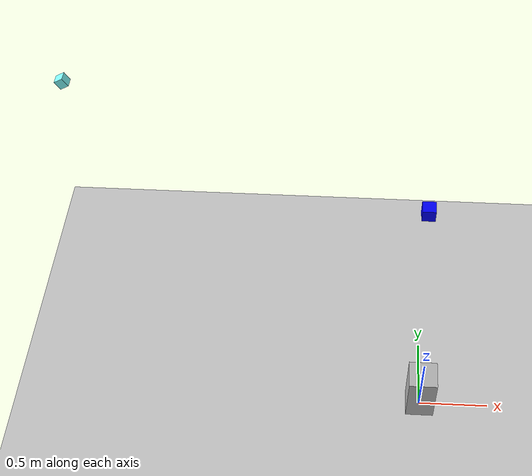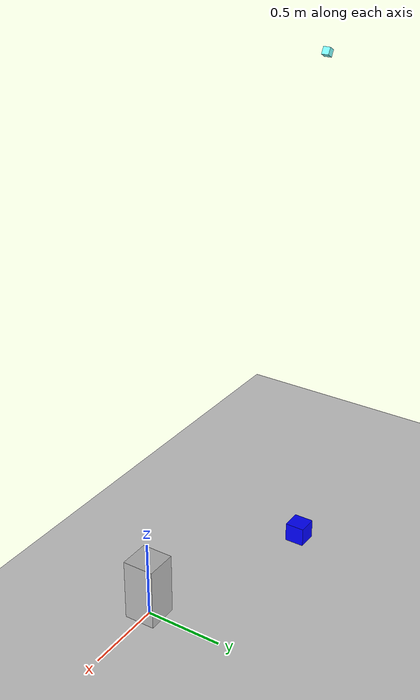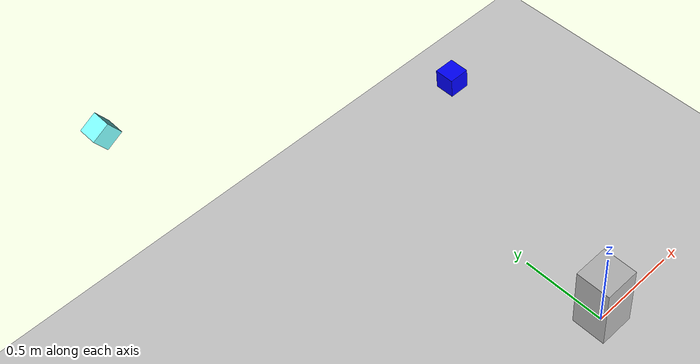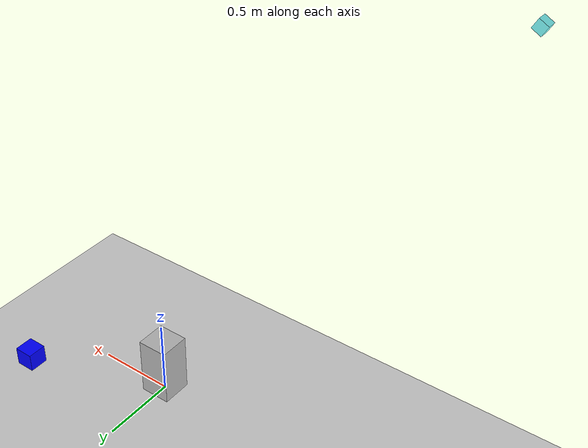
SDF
<?xml version="1.0"?>
<sdf version="1.6">
<world name="default">
    <include>
      <uri>model://ground_plane</uri>
    </include>

    <scene>
        <ambient>0 0 0 1</ambient>
        <background>0 0 0 1</background>
    </scene>

    <include>
        <uri>file:///home/kriso/gazebo_tutorial/models/cube</uri>
        <pose>0 0 0 0 0 0</pose>
    </include>

    <model name="camera0">
        <static>true</static>
        <pose>0 1 1 0 0 0</pose>
        <link name="link">
            <inertial>
                <mass>0.01</mass>
                <inertia>
                    <ixx>0.001</ixx>
                    <iyy>0.001</iyy>
                    <izz>0.001</izz>
                    <ixy>0</ixy>
                    <ixz>0</ixz>
                    <iyz>0</iyz>
                </inertia>
            </inertial>
            <collision name="collision">
                <geometry>
                    <box>
                    <size>0.1 0.1 0.1</size>
                    </box>
                </geometry>
            </collision>
            <visual name="visual">
                <geometry>
                    <box>
                        <size>0.1 0.1 0.1</size>
                    </box>
                </geometry>
                <material>
                    <ambient>0 0 1.0 1</ambient>
                    <diffuse>0 0 1.0 1</diffuse>
                    <specular>0 0 1.0 1</specular>
                </material>
            </visual>
            <sensor name="camera" type="camera">
                <camera>
                    <horizontal_fov>1.047</horizontal_fov>
                    <image>
                        <width>320</width>
                        <height>240</height>
                    </image>
                    <clip>
                        <near>0.1</near>
                        <far>100</far>
                    </clip>
                </camera>
                <always_on>1</always_on>
                <update_rate>200</update_rate>
                <visualize>true</visualize>
            </sensor>
        </link>
    </model>

    <model name='light_model'>
        <static>1</static>
        <pose>-2 0 3 0 0.5 3.14</pose>
        <link name='light_source'>
            <collision name='light_collision'>
                <geometry>
                    <box>
                        <size>0.05 0.05 0.05</size>
                    </box>
                </geometry>
            </collision>
            <visual name='lamp'>
                <geometry>
                    <box>
                        <size>0.05 0.05 0.05</size>
                    </box>
                </geometry>
                <material>
                    <ambient>0.5 1 1 1</ambient>
                    <diffuse>0.5 1 1 1</diffuse>
                    <specular>1 1 1 1</specular>
                    <emissive>0.5 1 1 1</emissive>
                </material>
            </visual>
            <light name='lamp' type='spot'>
                <attenuation>
                    <range>30</range>
                    <linear>0.05</linear>
                </attenuation>
                <diffuse>1 1 1 1</diffuse>
                <specular>1 1 1 1</specular>
                <spot>
                    <inner_angle>0.9</inner_angle>
                    <outer_angle>0.95</outer_angle>
                    <falloff>1</falloff>
                </spot>
            </light>
        </link>

    </model>

    <plugin name="GazeboPlugin" filename="lib/libGazeboCoSimPlugin.so"><portNumber>14581</portNumber></plugin>
</world>
</sdf>

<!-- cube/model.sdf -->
<sdf version="1.6">
  <model name="cube">
    <!-- 모델의 초기 위치 및 오리엔테이션 -->
    <pose>0 0 0 0 0 0</pose>

    <link name="link">
      <pose>0 0 0 0 0 0</pose>

      <!-- 충돌 형상 정의 -->
      <collision name="collision">
        <geometry>
          <mesh>
            <!-- Gazebo는 model:// 프로토콜을 사용하여 모델 디렉터리 내 파일을 참조 -->
            <uri>file:///home/kriso/gazebo_tutorial/models/cube/meshes/cube_checker.dae</uri>
            <!-- 필요에 따라 scale 값 조정 -->
            <scale>1 1 1</scale>
          </mesh>
        </geometry>
      </collision>

      <!-- 시각 형상 정의 -->
      <visual name="visual">
        <geometry>
          <mesh>
            <uri>file:///home/kriso/gazebo_tutorial/models/cube/meshes/cube_checker.dae</uri>
            <scale>1 1 1</scale>
          </mesh>
        </geometry>

        <material>
          <shader type="vertex">
            <vertex_shader>model://cube/shaders/uw_vetex.vert</vertex_shader>
            <fragment_shader>model://cube/shaders/uw_fragment.frag</fragment_shader>
          </shader>
        </material>

      </visual>
    </link>

    <!-- 필요에 따라 joint 등을 추가할 수 있습니다. -->
  </model>
</sdf>
